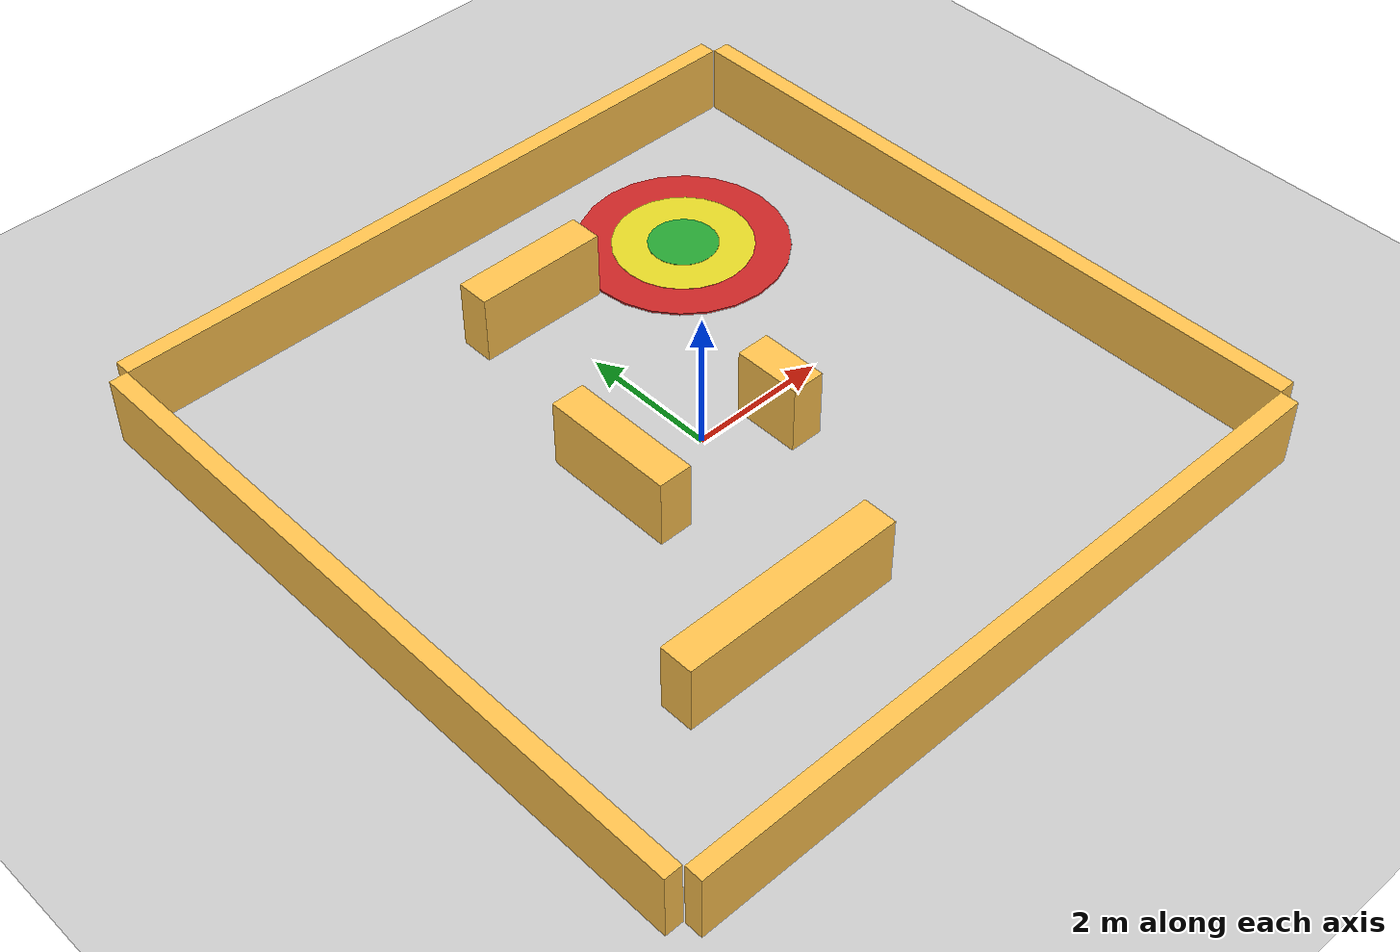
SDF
<sdf version="1.6">
 <world name="default">
  <light name="sun" type="directional">
   <pose>0 0 10 0 -0 0</pose>
   <diffuse>0.8 0.8 0.8 1</diffuse>
   <specular>0.2 0.2 0.2 1</specular>
   <attenuation>
    <range>1000</range>
    <constant>0.9</constant>
    <linear>0.01</linear>
    <quadratic>0.001</quadratic>
   </attenuation>
   <direction>0.5 0.1 -0.9</direction>
  </light>
  <model name="ground_plane">
   <static>1</static>
   <link name="link">
    <collision name="collision">
     <geometry><plane><normal>0 0 1</normal><size>100 100</size></plane></geometry>
     <surface><friction><ode><mu>100</mu><mu2>50</mu2></ode></friction></surface>
    </collision>
    <visual name="visual">
     <cast_shadows>0</cast_shadows>
     <geometry><plane><normal>0 0 1</normal><size>100 100</size></plane></geometry>
     <material>
      <script><uri>file://media/materials/scripts/gazebo.material</uri><name>Gazebo/Grey</name></script>
     </material>
    </visual>
    <velocity_decay><linear>0</linear><angular>0</angular></velocity_decay>
   </link>
  </model>
  <scene><ambient>0.4 0.4 0.4 1</ambient><background>0.7 0.7 0.7 1</background><shadows>0</shadows></scene>
  <physics name="default_physics" default="0" type="ode">
   <max_step_size>0.01</max_step_size>
   <real_time_factor>1</real_time_factor>
   <real_time_update_rate>0</real_time_update_rate>
  </physics>
  <gravity>0 0 -9.8</gravity>
  <magnetic_field>6e-06 2.3e-05 -4.2e-05</magnetic_field>
  <atmosphere type="adiabatic"/>
  <audio><device>default</device></audio>
  <spherical_coordinates>
   <surface_model>EARTH_WGS84</surface_model>
   <latitude_deg>0</latitude_deg>
   <longitude_deg>0</longitude_deg>
   <elevation>0</elevation>
   <heading_deg>0</heading_deg>
  </spherical_coordinates>
  <model name="Target">
   <static>1</static>
   <link name="green">
    <visual name="visual">
     <geometry><cylinder><radius>0.5</radius><length>0.05</length></cylinder></geometry>
     <material>
      <script><uri>file://media/materials/scripts/gazebo.material</uri><name>Gazebo/Green</name></script>
      <ambient>1 1 1 1</ambient>
     </material>
     <cast_shadows>0</cast_shadows>
    </visual>
   </link>
   <link name="yellow">
    <visual name="visual">
     <geometry><cylinder><radius>1</radius><length>0.04</length></cylinder></geometry>
     <material>
      <script><uri>file://media/materials/scripts/gazebo.material</uri><name>Gazebo/Yellow</name></script>
      <ambient>1 1 1 1</ambient>
     </material>
     <cast_shadows>0</cast_shadows>
    </visual>
   </link>
   <link name="red">
    <visual name="visual">
     <geometry><cylinder><radius>1.5</radius><length>0.03</length></cylinder></geometry>
     <material>
      <script><uri>file://media/materials/scripts/gazebo.material</uri><name>Gazebo/Red</name></script>
      <ambient>1 1 1 1</ambient>
     </material>
     <cast_shadows>0</cast_shadows>
    </visual>
   </link>
   <pose>2.5 3 0 0 -0 0</pose>
  </model>
  <model name="Boundaries">
   <link name="Wall_6">
    <pose>-2.4 -3.04601 0 0 -0 0</pose>
    <inertial>
     <inertia><ixx>0</ixx><ixy>0</ixy><ixz>0</ixz><iyy>0</iyy><iyz>0</iyz><izz>0</izz></inertia>
     <mass>0</mass>
    </inertial>
    <visual name="Wall_6_Visual">
     <pose>0 0 0.5 0 -0 0</pose>
     <geometry><box><size>10 0.253759 1</size></box></geometry>
     <material>
      <script><uri>file://media/materials/scripts/gazebo.material</uri><name>Gazebo/Grey</name></script>
      <ambient>1 0.764706 0.305882 1</ambient>
      <diffuse>0.7 0.7 0.7 1</diffuse>
      <specular>0.01 0.01 0.01 1</specular>
      <emissive>0 0 0 1</emissive>
      <shader type="pixel"/>
     </material>
    </visual>
    <collision name="Wall_6_Collision">
     <pose>0 0 0.5 0 -0 0</pose>
     <geometry><box><size>10 0.253759 1</size></box></geometry>
     <surface>
      <friction>
       <ode><mu>1</mu><mu2>1</mu2><fdir1>0 0 0</fdir1><slip1>0</slip1><slip2>0</slip2></ode>
       <torsional>
        <coefficient>1</coefficient>
        <patch_radius>0</patch_radius>
        <surface_radius>0</surface_radius>
        <use_patch_radius>1</use_patch_radius>
        <ode><slip>0</slip></ode>
       </torsional>
      </friction>
      <bounce><restitution_coefficient>0</restitution_coefficient><threshold>1e+06</threshold></bounce>
      <contact>
       <collide_without_contact>0</collide_without_contact>
       <collide_without_contact_bitmask>1</collide_without_contact_bitmask>
       <collide_bitmask>1</collide_bitmask>
       <ode>
        <soft_cfm>0</soft_cfm>
        <soft_erp>0.2</soft_erp>
        <kp>1e+13</kp>
        <kd>1</kd>
        <max_vel>0.01</max_vel>
        <min_depth>0</min_depth>
       </ode>
       <bullet>
        <split_impulse>1</split_impulse>
        <split_impulse_penetration_threshold>-0.01</split_impulse_penetration_threshold>
        <soft_cfm>0</soft_cfm>
        <soft_erp>0.2</soft_erp>
        <kp>1e+13</kp>
        <kd>1</kd>
       </bullet>
      </contact>
     </surface>
    </collision>
   </link>
   <link name="Wall_6_clone">
    <pose>-7.53349 2.1 0 0 0 -1.5708</pose>
    <inertial>
     <inertia><ixx>0</ixx><ixy>0</ixy><ixz>0</ixz><iyy>0</iyy><iyz>0</iyz><izz>0</izz></inertia>
     <mass>0</mass>
    </inertial>
    <visual name="Wall_6_Visual">
     <pose>0 0 0.5 0 -0 0</pose>
     <geometry><box><size>10 0.253759 1</size></box></geometry>
     <material>
      <script><uri>file://media/materials/scripts/gazebo.material</uri><name>Gazebo/Grey</name></script>
      <ambient>1 0.764706 0.305882 1</ambient>
      <diffuse>0.7 0.7 0.7 1</diffuse>
      <specular>0.01 0.01 0.01 1</specular>
      <emissive>0 0 0 1</emissive>
      <shader type="pixel"/>
     </material>
    </visual>
    <collision name="Wall_6_Collision">
     <pose>0 0 0.5 0 -0 0</pose>
     <geometry><box><size>10 0.253759 1</size></box></geometry>
     <surface>
      <friction>
       <ode><mu>1</mu><mu2>1</mu2><fdir1>0 0 0</fdir1><slip1>0</slip1><slip2>0</slip2></ode>
       <torsional>
        <coefficient>1</coefficient>
        <patch_radius>0</patch_radius>
        <surface_radius>0</surface_radius>
        <use_patch_radius>1</use_patch_radius>
        <ode><slip>0</slip></ode>
       </torsional>
      </friction>
      <bounce><restitution_coefficient>0</restitution_coefficient><threshold>1e+06</threshold></bounce>
      <contact>
       <collide_without_contact>0</collide_without_contact>
       <collide_without_contact_bitmask>1</collide_without_contact_bitmask>
       <collide_bitmask>1</collide_bitmask>
       <ode>
        <soft_cfm>0</soft_cfm>
        <soft_erp>0.2</soft_erp>
        <kp>1e+13</kp>
        <kd>1</kd>
        <max_vel>0.01</max_vel>
        <min_depth>0</min_depth>
       </ode>
       <bullet>
        <split_impulse>1</split_impulse>
        <split_impulse_penetration_threshold>-0.01</split_impulse_penetration_threshold>
        <soft_cfm>0</soft_cfm>
        <soft_erp>0.2</soft_erp>
        <kp>1e+13</kp>
        <kd>1</kd>
       </bullet>
      </contact>
     </surface>
    </collision>
   </link>
   <link name="Wall_6_clone_clone">
    <pose>-2.4 7.21616 0 0 -0 3.14159</pose>
    <inertial>
     <inertia><ixx>0</ixx><ixy>0</ixy><ixz>0</ixz><iyy>0</iyy><iyz>0</iyz><izz>0</izz></inertia>
     <mass>0</mass>
    </inertial>
    <visual name="Wall_6_Visual">
     <pose>0 0 0.5 0 -0 0</pose>
     <geometry><box><size>10 0.253759 1</size></box></geometry>
     <material>
      <script><uri>file://media/materials/scripts/gazebo.material</uri><name>Gazebo/Grey</name></script>
      <ambient>1 0.765 0.306 1</ambient>
      <diffuse>0.7 0.7 0.7 1</diffuse>
      <specular>0.01 0.01 0.01 1</specular>
      <emissive>0 0 0 1</emissive>
      <shader type="pixel"><normal_map>__default__</normal_map></shader>
     </material>
    </visual>
    <collision name="Wall_6_Collision">
     <pose>0 0 0.5 0 -0 0</pose>
     <geometry><box><size>10 0.253759 1</size></box></geometry>
     <surface>
      <friction>
       <ode><mu>1</mu><mu2>1</mu2><fdir1>0 0 0</fdir1><slip1>0</slip1><slip2>0</slip2></ode>
       <torsional>
        <coefficient>1</coefficient>
        <patch_radius>0</patch_radius>
        <surface_radius>0</surface_radius>
        <use_patch_radius>1</use_patch_radius>
        <ode><slip>0</slip></ode>
       </torsional>
      </friction>
      <bounce><restitution_coefficient>0</restitution_coefficient><threshold>1e+06</threshold></bounce>
      <contact>
       <collide_without_contact>0</collide_without_contact>
       <collide_without_contact_bitmask>1</collide_without_contact_bitmask>
       <collide_bitmask>1</collide_bitmask>
       <ode>
        <soft_cfm>0</soft_cfm>
        <soft_erp>0.2</soft_erp>
        <kp>1e+13</kp>
        <kd>1</kd>
        <max_vel>0.01</max_vel>
        <min_depth>0</min_depth>
       </ode>
       <bullet>
        <split_impulse>1</split_impulse>
        <split_impulse_penetration_threshold>-0.01</split_impulse_penetration_threshold>
        <soft_cfm>0</soft_cfm>
        <soft_erp>0.2</soft_erp>
        <kp>1e+13</kp>
        <kd>1</kd>
       </bullet>
      </contact>
     </surface>
    </collision>
   </link>
   <link name="Wall_6_clone_clone_0">
    <pose>2.73718 2.0846 0 0 0 -1.5708</pose>
    <inertial>
     <inertia><ixx>0</ixx><ixy>0</ixy><ixz>0</ixz><iyy>0</iyy><iyz>0</iyz><izz>0</izz></inertia>
     <mass>0</mass>
    </inertial>
    <visual name="Wall_6_Visual">
     <pose>0 0 0.5 0 -0 0</pose>
     <geometry><box><size>10 0.253759 1</size></box></geometry>
     <material>
      <script><uri>file://media/materials/scripts/gazebo.material</uri><name>Gazebo/Grey</name></script>
      <ambient>1 0.764706 0.305882 1</ambient>
      <diffuse>0.7 0.7 0.7 1</diffuse>
      <specular>0.01 0.01 0.01 1</specular>
      <emissive>0 0 0 1</emissive>
      <shader type="pixel"/>
     </material>
    </visual>
    <collision name="Wall_6_Collision">
     <pose>0 0 0.5 0 -0 0</pose>
     <geometry><box><size>10 0.253759 1</size></box></geometry>
     <surface>
      <friction>
       <ode><mu>1</mu><mu2>1</mu2><fdir1>0 0 0</fdir1><slip1>0</slip1><slip2>0</slip2></ode>
       <torsional>
        <coefficient>1</coefficient>
        <patch_radius>0</patch_radius>
        <surface_radius>0</surface_radius>
        <use_patch_radius>1</use_patch_radius>
        <ode><slip>0</slip></ode>
       </torsional>
      </friction>
      <bounce><restitution_coefficient>0</restitution_coefficient><threshold>1e+06</threshold></bounce>
      <contact>
       <collide_without_contact>0</collide_without_contact>
       <collide_without_contact_bitmask>1</collide_without_contact_bitmask>
       <collide_bitmask>1</collide_bitmask>
       <ode>
        <soft_cfm>0</soft_cfm>
        <soft_erp>0.2</soft_erp>
        <kp>1e+13</kp>
        <kd>1</kd>
        <max_vel>0.01</max_vel>
        <min_depth>0</min_depth>
       </ode>
       <bullet>
        <split_impulse>1</split_impulse>
        <split_impulse_penetration_threshold>-0.01</split_impulse_penetration_threshold>
        <soft_cfm>0</soft_cfm>
        <soft_erp>0.2</soft_erp>
        <kp>1e+13</kp>
        <kd>1</kd>
       </bullet>
      </contact>
     </surface>
    </collision>
   </link>
   <static>1</static>
   <pose>2.39768 -2.08635 0 0 -0 0</pose>
  </model>
  <model name="Wall">
   <link name="Wall_6">
    <pose>-2.4 -1.64761 0 0 -0 0</pose>
    <inertial>
     <inertia><ixx>0</ixx><ixy>0</ixy><ixz>0</ixz><iyy>0</iyy><iyz>0</iyz><izz>0</izz></inertia>
     <mass>0</mass>
    </inertial>
    <visual name="Wall_6_Visual">
     <pose>0 0 0.5 0 -0 0</pose>
     <geometry><box><size>3.24577 0.485902 1</size></box></geometry>
     <material>
      <script><uri>file://media/materials/scripts/gazebo.material</uri><name>Gazebo/Grey</name></script>
      <ambient>1 0.764706 0.305882 1</ambient>
      <diffuse>0.7 0.7 0.7 1</diffuse>
      <specular>0.01 0.01 0.01 1</specular>
      <emissive>0 0 0 1</emissive>
      <shader type="pixel"/>
     </material>
    </visual>
    <collision name="Wall_6_Collision">
     <pose>0 0 0.5 0 -0 0</pose>
     <geometry><box><size>3.24577 0.485902 1</size></box></geometry>
     <surface>
      <friction>
       <ode><mu>1</mu><mu2>1</mu2><fdir1>0 0 0</fdir1><slip1>0</slip1><slip2>0</slip2></ode>
       <torsional>
        <coefficient>1</coefficient>
        <patch_radius>0</patch_radius>
        <surface_radius>0</surface_radius>
        <use_patch_radius>1</use_patch_radius>
        <ode><slip>0</slip></ode>
       </torsional>
      </friction>
      <bounce><restitution_coefficient>0</restitution_coefficient><threshold>1e+06</threshold></bounce>
      <contact>
       <collide_without_contact>0</collide_without_contact>
       <collide_without_contact_bitmask>1</collide_without_contact_bitmask>
       <collide_bitmask>1</collide_bitmask>
       <ode>
        <soft_cfm>0</soft_cfm>
        <soft_erp>0.2</soft_erp>
        <kp>1e+13</kp>
        <kd>1</kd>
        <max_vel>0.01</max_vel>
        <min_depth>0</min_depth>
       </ode>
       <bullet>
        <split_impulse>1</split_impulse>
        <split_impulse_penetration_threshold>-0.01</split_impulse_penetration_threshold>
        <soft_cfm>0</soft_cfm>
        <soft_erp>0.2</soft_erp>
        <kp>1e+13</kp>
        <kd>1</kd>
       </bullet>
      </contact>
     </surface>
    </collision>
   </link>
   <static>1</static>
   <pose>-4.02497 -4.64285 0 0 -0 -3.14159</pose>
  </model>
  <model name="Wall_med">
   <link name="Wall_6">
    <pose>-1.87712 -1.92861 0 0 -0 1.5708</pose>
    <inertial>
     <inertia><ixx>0</ixx><ixy>0</ixy><ixz>0</ixz><iyy>0</iyy><iyz>0</iyz><izz>0</izz></inertia>
     <mass>0</mass>
    </inertial>
    <visual name="Wall_6_Visual">
     <pose>0 0 0.5 0 -0 0</pose>
     <geometry><box><size>1.93257 0.485902 1</size></box></geometry>
     <material>
      <script><uri>file://media/materials/scripts/gazebo.material</uri><name>Gazebo/Grey</name></script>
      <ambient>1 0.764706 0.305882 1</ambient>
      <diffuse>0.7 0.7 0.7 1</diffuse>
      <specular>0.01 0.01 0.01 1</specular>
      <emissive>0 0 0 1</emissive>
      <shader type="pixel"/>
     </material>
    </visual>
    <collision name="Wall_6_Collision">
     <pose>0 0 0.5 0 -0 0</pose>
     <geometry><box><size>1.93257 0.485902 1</size></box></geometry>
     <surface>
      <friction>
       <ode><mu>1</mu><mu2>1</mu2><fdir1>0 0 0</fdir1><slip1>0</slip1><slip2>0</slip2></ode>
       <torsional>
        <coefficient>1</coefficient>
        <patch_radius>0</patch_radius>
        <surface_radius>0</surface_radius>
        <use_patch_radius>1</use_patch_radius>
        <ode><slip>0</slip></ode>
       </torsional>
      </friction>
      <bounce><restitution_coefficient>0</restitution_coefficient><threshold>1e+06</threshold></bounce>
      <contact>
       <collide_without_contact>0</collide_without_contact>
       <collide_without_contact_bitmask>1</collide_without_contact_bitmask>
       <collide_bitmask>1</collide_bitmask>
       <ode>
        <soft_cfm>0</soft_cfm>
        <soft_erp>0.2</soft_erp>
        <kp>1e+13</kp>
        <kd>1</kd>
        <max_vel>0.01</max_vel>
        <min_depth>0</min_depth>
       </ode>
       <bullet>
        <split_impulse>1</split_impulse>
        <split_impulse_penetration_threshold>-0.01</split_impulse_penetration_threshold>
        <soft_cfm>0</soft_cfm>
        <soft_erp>0.2</soft_erp>
        <kp>1e+13</kp>
        <kd>1</kd>
       </bullet>
      </contact>
     </surface>
    </collision>
   </link>
   <static>1</static>
   <pose>-1.94208 5.11447 0 0 -0 1.57079</pose>
  </model>
  <model name="Wall_short">
   <link name="Wall_6">
    <pose>-1.87712 -1.64761 0 0 -0 0</pose>
    <inertial>
     <inertia><ixx>0</ixx><ixy>0</ixy><ixz>0</ixz><iyy>0</iyy><iyz>0</iyz><izz>0</izz></inertia>
     <mass>0</mass>
    </inertial>
    <visual name="Wall_6_Visual">
     <pose>0 0 0.5 0 -0 0</pose>
     <geometry><box><size>0.978398 0.485902 1</size></box></geometry>
     <material>
      <script><uri>file://media/materials/scripts/gazebo.material</uri><name>Gazebo/Grey</name></script>
      <ambient>1 0.764706 0.305882 1</ambient>
      <diffuse>0.7 0.7 0.7 1</diffuse>
      <specular>0.01 0.01 0.01 1</specular>
      <emissive>0 0 0 1</emissive>
      <shader type="pixel"/>
     </material>
    </visual>
    <collision name="Wall_6_Collision">
     <pose>0 0 0.5 0 -0 0</pose>
     <geometry><box><size>0.978398 0.485902 1</size></box></geometry>
     <surface>
      <friction>
       <ode><mu>1</mu><mu2>1</mu2><fdir1>0 0 0</fdir1><slip1>0</slip1><slip2>0</slip2></ode>
       <torsional>
        <coefficient>1</coefficient>
        <patch_radius>0</patch_radius>
        <surface_radius>0</surface_radius>
        <use_patch_radius>1</use_patch_radius>
        <ode><slip>0</slip></ode>
       </torsional>
      </friction>
      <bounce><restitution_coefficient>0</restitution_coefficient><threshold>1e+06</threshold></bounce>
      <contact>
       <collide_without_contact>0</collide_without_contact>
       <collide_without_contact_bitmask>1</collide_without_contact_bitmask>
       <collide_bitmask>1</collide_bitmask>
       <ode>
        <soft_cfm>0</soft_cfm>
        <soft_erp>0.2</soft_erp>
        <kp>1e+13</kp>
        <kd>1</kd>
        <max_vel>0.01</max_vel>
        <min_depth>0</min_depth>
       </ode>
       <bullet>
        <split_impulse>1</split_impulse>
        <split_impulse_penetration_threshold>-0.01</split_impulse_penetration_threshold>
        <soft_cfm>0</soft_cfm>
        <soft_erp>0.2</soft_erp>
        <kp>1e+13</kp>
        <kd>1</kd>
       </bullet>
      </contact>
     </surface>
    </collision>
   </link>
   <static>1</static>
   <pose>-0.703984 1.45789 0 0 -0 1.5708</pose>
  </model>
  <model name="Wall_med_clone">
   <link name="Wall_6">
    <pose>-1.87712 -1.92861 0 0 -0 1.5708</pose>
    <inertial>
     <inertia><ixx>0</ixx><ixy>0</ixy><ixz>0</ixz><iyy>0</iyy><iyz>0</iyz><izz>0</izz></inertia>
     <mass>0</mass>
    </inertial>
    <visual name="Wall_6_Visual">
     <pose>0 0 0.5 0 -0 0</pose>
     <geometry><box><size>1.93257 0.485902 1</size></box></geometry>
     <material>
      <script><uri>file://media/materials/scripts/gazebo.material</uri><name>Gazebo/Grey</name></script>
      <ambient>1 0.764706 0.305882 1</ambient>
      <diffuse>0.7 0.7 0.7 1</diffuse>
      <specular>0.01 0.01 0.01 1</specular>
      <emissive>0 0 0 1</emissive>
      <shader type="pixel"/>
     </material>
    </visual>
    <collision name="Wall_6_Collision">
     <pose>0 0 0.5 0 -0 0</pose>
     <geometry><box><size>1.93257 0.485902 1</size></box></geometry>
     <surface>
      <friction>
       <ode><mu>1</mu><mu2>1</mu2><fdir1>0 0 0</fdir1><slip1>0</slip1><slip2>0</slip2></ode>
       <torsional>
        <coefficient>1</coefficient>
        <patch_radius>0</patch_radius>
        <surface_radius>0</surface_radius>
        <use_patch_radius>1</use_patch_radius>
        <ode><slip>0</slip></ode>
       </torsional>
      </friction>
      <bounce><restitution_coefficient>0</restitution_coefficient><threshold>1e+06</threshold></bounce>
      <contact>
       <collide_without_contact>0</collide_without_contact>
       <collide_without_contact_bitmask>1</collide_without_contact_bitmask>
       <collide_bitmask>1</collide_bitmask>
       <ode>
        <soft_cfm>0</soft_cfm>
        <soft_erp>0.2</soft_erp>
        <kp>1e+13</kp>
        <kd>1</kd>
        <max_vel>0.01</max_vel>
        <min_depth>0</min_depth>
       </ode>
       <bullet>
        <split_impulse>1</split_impulse>
        <split_impulse_penetration_threshold>-0.01</split_impulse_penetration_threshold>
        <soft_cfm>0</soft_cfm>
        <soft_erp>0.2</soft_erp>
        <kp>1e+13</kp>
        <kd>1</kd>
       </bullet>
      </contact>
     </surface>
    </collision>
   </link>
   <static>1</static>
   <pose>-3.21288 -1.92049 0 0 -0 3.14159</pose>
  </model>
 </world>
</sdf>
